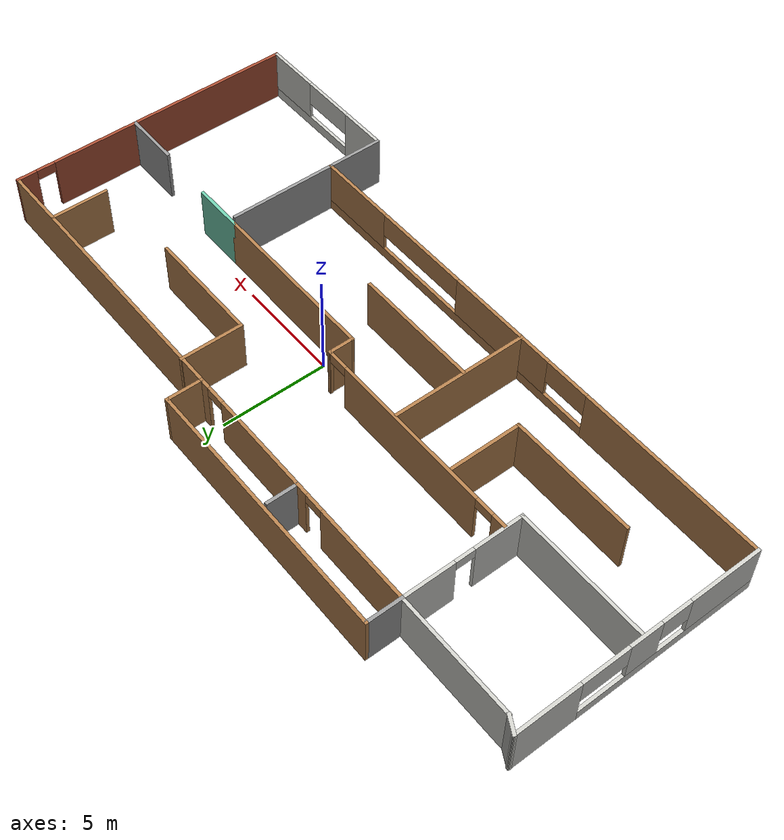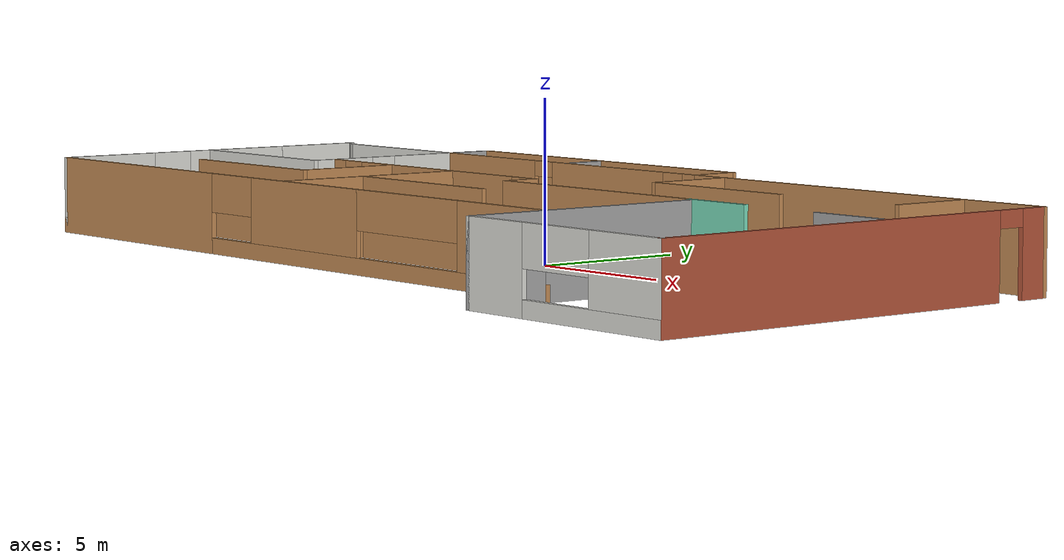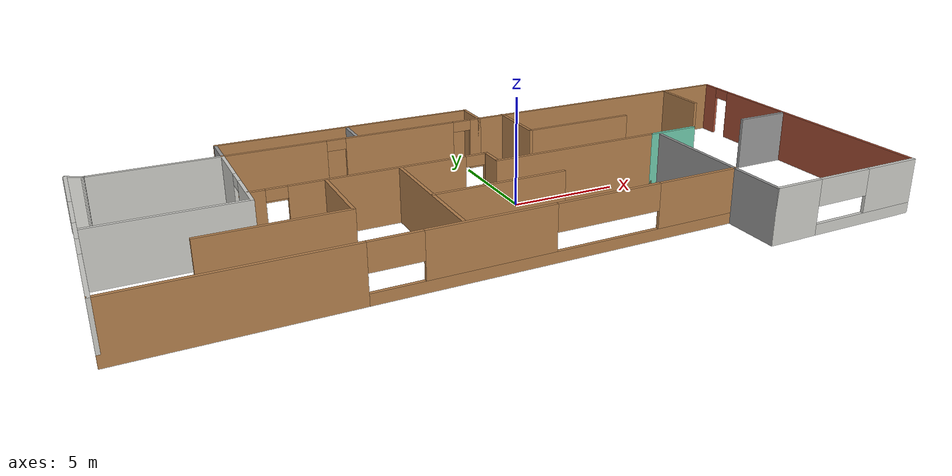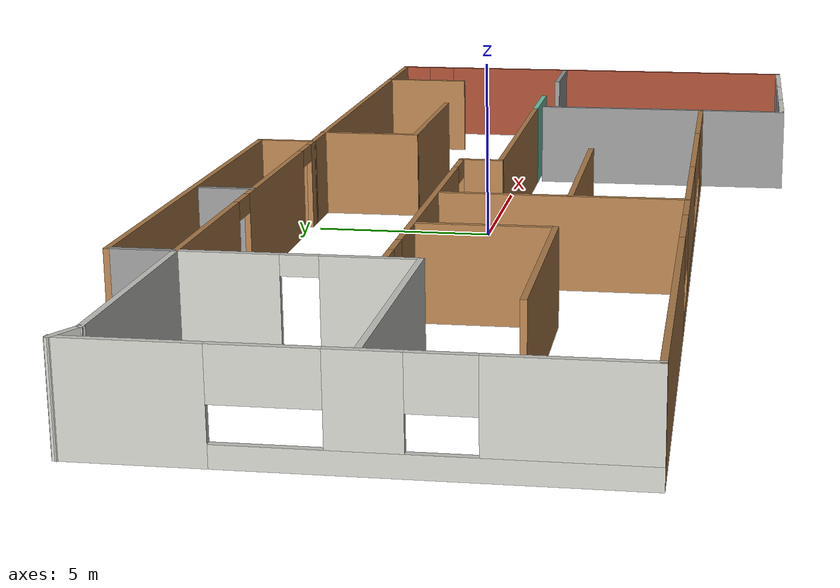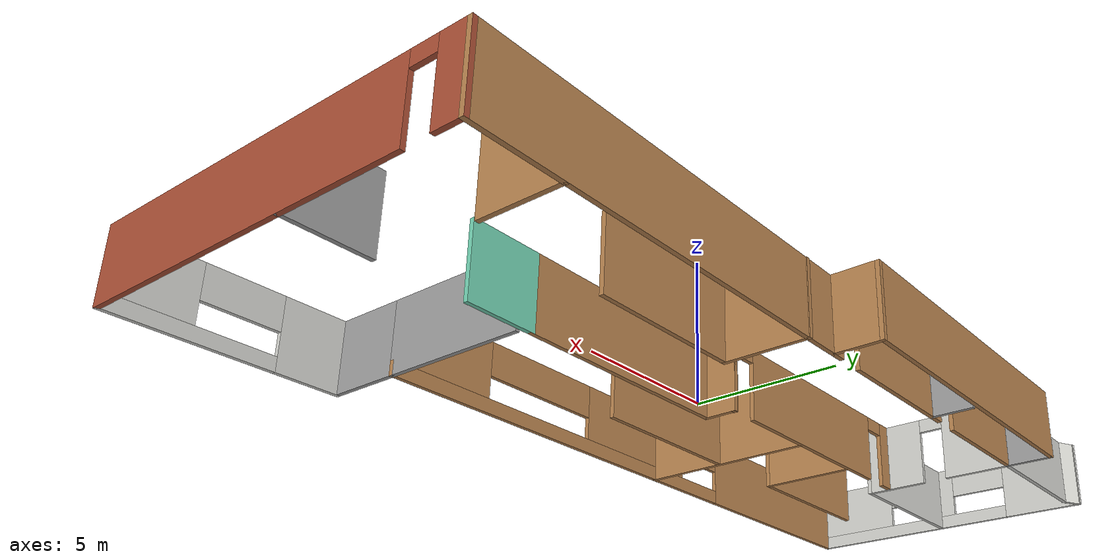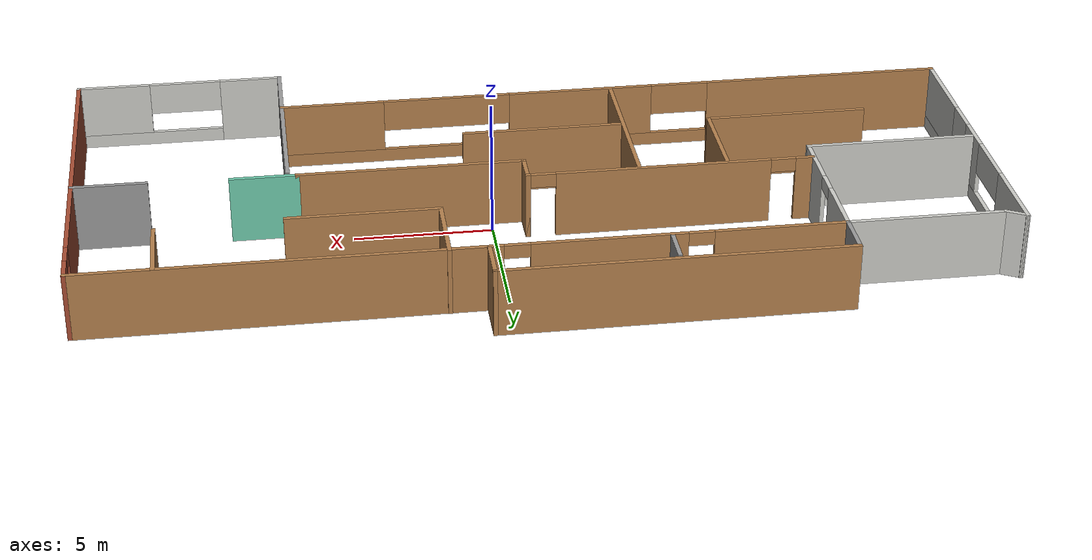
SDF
<?xml version='1.0'?>
<sdf version='1.6'>
  <model name='archi'>
    <pose frame=''>-1.53516 -0.78074 0 0 -0 0</pose>
    <link name='Wall_0'>
      <pose frame=''>-16.3367 0.675001 0 0 0 -1.5708</pose>
      <visual name='Wall_0_Visual_0'>
        <pose frame=''>-4.32805 0 1.25 0 -0 0</pose>
        <geometry>
          <box>
            <size>3.0939 0.15 2.5</size>
          </box>
        </geometry>
        <material>
          <script>
            <uri>file://media/materials/scripts/gazebo.material</uri>
            <name>Gazebo/CeilingTiled</name>
          </script>
          <ambient>1 1 1 1</ambient>
        </material>
        <meta>
          <layer>0</layer>
        </meta>
      </visual>
      <collision name='Wall_0_Collision_0'>
        <geometry>
          <box>
            <size>3.0939 0.15 2.5</size>
          </box>
        </geometry>
        <pose frame=''>-4.32805 0 1.25 0 -0 0</pose>
      </collision>
      <visual name='Wall_0_Visual_1'>
        <pose frame=''>1.54695 0 0.25 0 -0 0</pose>
        <geometry>
          <box>
            <size>8.6561 0.15 0.5</size>
          </box>
        </geometry>
        <material>
          <script>
            <uri>file://media/materials/scripts/gazebo.material</uri>
            <name>Gazebo/CeilingTiled</name>
          </script>
          <ambient>1 1 1 1</ambient>
        </material>
        <meta>
          <layer>0</layer>
        </meta>
      </visual>
      <collision name='Wall_0_Collision_1'>
        <geometry>
          <box>
            <size>8.6561 0.15 0.5</size>
          </box>
        </geometry>
        <pose frame=''>1.54695 0 0.25 0 -0 0</pose>
      </collision>
      <visual name='Wall_0_Visual_2'>
        <pose frame=''>0.24907 0 1.5 0 -0 0</pose>
        <geometry>
          <box>
            <size>1.54754 0.15 2</size>
          </box>
        </geometry>
        <material>
          <script>
            <uri>file://media/materials/scripts/gazebo.material</uri>
            <name>Gazebo/CeilingTiled</name>
          </script>
          <ambient>1 1 1 1</ambient>
        </material>
        <meta>
          <layer>0</layer>
        </meta>
      </visual>
      <collision name='Wall_0_Collision_2'>
        <geometry>
          <box>
            <size>1.54754 0.15 2</size>
          </box>
        </geometry>
        <pose frame=''>0.24907 0 1.5 0 -0 0</pose>
      </collision>
      <visual name='Wall_0_Visual_3'>
        <pose frame=''>4.15234 0 1.5 0 -0 0</pose>
        <geometry>
          <box>
            <size>3.44533 0.15 2</size>
          </box>
        </geometry>
        <material>
          <script>
            <uri>file://media/materials/scripts/gazebo.material</uri>
            <name>Gazebo/CeilingTiled</name>
          </script>
          <ambient>1 1 1 1</ambient>
        </material>
        <meta>
          <layer>0</layer>
        </meta>
      </visual>
      <collision name='Wall_0_Collision_3'>
        <geometry>
          <box>
            <size>3.44533 0.15 2</size>
          </box>
        </geometry>
        <pose frame=''>4.15234 0 1.5 0 -0 0</pose>
      </collision>
      <visual name='Wall_0_Visual_4'>
        <pose frame=''>-1.6529 0 1.9 0 -0 0</pose>
        <geometry>
          <box>
            <size>2.2564 0.15 1.2</size>
          </box>
        </geometry>
        <material>
          <script>
            <uri>file://media/materials/scripts/gazebo.material</uri>
            <name>Gazebo/CeilingTiled</name>
          </script>
          <ambient>1 1 1 1</ambient>
        </material>
        <meta>
          <layer>0</layer>
        </meta>
      </visual>
      <collision name='Wall_0_Collision_4'>
        <geometry>
          <box>
            <size>2.2564 0.15 1.2</size>
          </box>
        </geometry>
        <pose frame=''>-1.6529 0 1.9 0 -0 0</pose>
      </collision>
      <visual name='Wall_0_Visual_5'>
        <pose frame=''>1.72626 0 1.9 0 -0 0</pose>
        <geometry>
          <box>
            <size>1.40683 0.15 1.2</size>
          </box>
        </geometry>
        <material>
          <script>
            <uri>file://media/materials/scripts/gazebo.material</uri>
            <name>Gazebo/CeilingTiled</name>
          </script>
          <ambient>1 1 1 1</ambient>
        </material>
        <meta>
          <layer>0</layer>
        </meta>
      </visual>
      <collision name='Wall_0_Collision_5'>
        <geometry>
          <box>
            <size>1.40683 0.15 1.2</size>
          </box>
        </geometry>
        <pose frame=''>1.72626 0 1.9 0 -0 0</pose>
      </collision>
    </link>
    <link name='Wall_1'>
      <pose frame=''>-3.7867 -5.125 0 0 -0 0</pose>
      <visual name='Wall_1_Visual_0'>
        <pose frame=''>-8.15953 0 1.25 0 -0 0</pose>
        <geometry>
          <box>
            <size>8.93093 0.15 2.5</size>
          </box>
        </geometry>
        <material>
          <script>
            <uri>file://media/materials/scripts/gazebo.material</uri>
            <name>Gazebo/Wood</name>
          </script>
          <ambient>1 1 1 1</ambient>
        </material>
        <meta>
          <layer>0</layer>
        </meta>
      </visual>
      <collision name='Wall_1_Collision_0'>
        <geometry>
          <box>
            <size>8.93093 0.15 2.5</size>
          </box>
        </geometry>
        <pose frame=''>-8.15953 0 1.25 0 -0 0</pose>
      </collision>
      <visual name='Wall_1_Visual_1'>
        <pose frame=''>4.46547 0 0.25 0 -0 0</pose>
        <geometry>
          <box>
            <size>16.3191 0.15 0.5</size>
          </box>
        </geometry>
        <material>
          <script>
            <uri>file://media/materials/scripts/gazebo.material</uri>
            <name>Gazebo/Wood</name>
          </script>
          <ambient>1 1 1 1</ambient>
        </material>
        <meta>
          <layer>0</layer>
        </meta>
      </visual>
      <collision name='Wall_1_Collision_1'>
        <geometry>
          <box>
            <size>16.3191 0.15 0.5</size>
          </box>
        </geometry>
        <pose frame=''>4.46547 0 0.25 0 -0 0</pose>
      </collision>
      <visual name='Wall_1_Visual_2'>
        <pose frame=''>1.21911 0 1.5 0 -0 0</pose>
        <geometry>
          <box>
            <size>5.47537 0.15 2</size>
          </box>
        </geometry>
        <material>
          <script>
            <uri>file://media/materials/scripts/gazebo.material</uri>
            <name>Gazebo/Wood</name>
          </script>
          <ambient>1 1 1 1</ambient>
        </material>
        <meta>
          <layer>0</layer>
        </meta>
      </visual>
      <collision name='Wall_1_Collision_2'>
        <geometry>
          <box>
            <size>5.47537 0.15 2</size>
          </box>
        </geometry>
        <pose frame=''>1.21911 0 1.5 0 -0 0</pose>
      </collision>
      <visual name='Wall_1_Visual_3'>
        <pose frame=''>10.6732 0 1.5 0 -0 0</pose>
        <geometry>
          <box>
            <size>3.90356 0.15 2</size>
          </box>
        </geometry>
        <material>
          <script>
            <uri>file://media/materials/scripts/gazebo.material</uri>
            <name>Gazebo/Wood</name>
          </script>
          <ambient>1 1 1 1</ambient>
        </material>
        <meta>
          <layer>0</layer>
        </meta>
      </visual>
      <collision name='Wall_1_Collision_3'>
        <geometry>
          <box>
            <size>3.90356 0.15 2</size>
          </box>
        </geometry>
        <pose frame=''>10.6732 0 1.5 0 -0 0</pose>
      </collision>
      <visual name='Wall_1_Visual_4'>
        <pose frame=''>-2.60632 0 1.9 0 -0 0</pose>
        <geometry>
          <box>
            <size>2.17549 0.15 1.2</size>
          </box>
        </geometry>
        <material>
          <script>
            <uri>file://media/materials/scripts/gazebo.material</uri>
            <name>Gazebo/Wood</name>
          </script>
          <ambient>1 1 1 1</ambient>
        </material>
        <meta>
          <layer>0</layer>
        </meta>
      </visual>
      <collision name='Wall_1_Collision_4'>
        <geometry>
          <box>
            <size>2.17549 0.15 1.2</size>
          </box>
        </geometry>
        <pose frame=''>-2.60632 0 1.9 0 -0 0</pose>
      </collision>
      <visual name='Wall_1_Visual_5'>
        <pose frame=''>6.33911 0 1.9 0 -0 0</pose>
        <geometry>
          <box>
            <size>4.76465 0.15 1.2</size>
          </box>
        </geometry>
        <material>
          <script>
            <uri>file://media/materials/scripts/gazebo.material</uri>
            <name>Gazebo/Wood</name>
          </script>
          <ambient>1 1 1 1</ambient>
        </material>
        <meta>
          <layer>0</layer>
        </meta>
      </visual>
      <collision name='Wall_1_Collision_5'>
        <geometry>
          <box>
            <size>4.76465 0.15 1.2</size>
          </box>
        </geometry>
        <pose frame=''>6.33911 0 1.9 0 -0 0</pose>
      </collision>
    </link>
    <link name='Wall_10'>
      <collision name='Wall_10_Collision'>
        <geometry>
          <box>
            <size>0.888241 0.15 2.5</size>
          </box>
        </geometry>
        <pose frame=''>0 0 1.25 0 -0 0</pose>
      </collision>
      <visual name='Wall_10_Visual'>
        <pose frame=''>0 0 1.25 0 -0 0</pose>
        <geometry>
          <box>
            <size>0.888241 0.15 2.5</size>
          </box>
        </geometry>
        <material>
          <script>
            <uri>file://media/materials/scripts/gazebo.material</uri>
            <name>Gazebo/CeilingTiled</name>
          </script>
          <ambient>1 1 1 1</ambient>
        </material>
        <meta>
          <layer>0</layer>
        </meta>
      </visual>
      <pose frame=''>-16.0117 6.3 0 0 -0 2.64765</pose>
    </link>
    <link name='Wall_12'>
      <pose frame=''>-3.9117 6.125 0 0 -0 0</pose>
      <visual name='Wall_12_Visual_0'>
        <pose frame=''>-3.89123 0 1.25 0 -0 0</pose>
        <geometry>
          <box>
            <size>4.71753 0.15 2.5</size>
          </box>
        </geometry>
        <material>
          <script>
            <uri>file://media/materials/scripts/gazebo.material</uri>
            <name>Gazebo/Wood</name>
          </script>
          <ambient>1 1 1 1</ambient>
        </material>
        <meta>
          <layer>0</layer>
        </meta>
      </visual>
      <collision name='Wall_12_Collision_0'>
        <geometry>
          <box>
            <size>4.71753 0.15 2.5</size>
          </box>
        </geometry>
        <pose frame=''>-3.89123 0 1.25 0 -0 0</pose>
      </collision>
      <visual name='Wall_12_Visual_1'>
        <pose frame=''>2.07418 0 1.25 0 -0 0</pose>
        <geometry>
          <box>
            <size>5.41329 0.15 2.5</size>
          </box>
        </geometry>
        <material>
          <script>
            <uri>file://media/materials/scripts/gazebo.material</uri>
            <name>Gazebo/Wood</name>
          </script>
          <ambient>1 1 1 1</ambient>
        </material>
        <meta>
          <layer>0</layer>
        </meta>
      </visual>
      <collision name='Wall_12_Collision_1'>
        <geometry>
          <box>
            <size>5.41329 0.15 2.5</size>
          </box>
        </geometry>
        <pose frame=''>2.07418 0 1.25 0 -0 0</pose>
      </collision>
      <visual name='Wall_12_Visual_2'>
        <pose frame=''>5.96541 0 1.25 0 -0 0</pose>
        <geometry>
          <box>
            <size>0.569174 0.15 2.5</size>
          </box>
        </geometry>
        <material>
          <script>
            <uri>file://media/materials/scripts/gazebo.material</uri>
            <name>Gazebo/Wood</name>
          </script>
          <ambient>1 1 1 1</ambient>
        </material>
        <meta>
          <layer>0</layer>
        </meta>
      </visual>
      <collision name='Wall_12_Collision_2'>
        <geometry>
          <box>
            <size>0.569174 0.15 2.5</size>
          </box>
        </geometry>
        <pose frame=''>5.96541 0 1.25 0 -0 0</pose>
      </collision>
      <visual name='Wall_12_Visual_3'>
        <pose frame=''>-1.08247 0 2.25 0 -0 0</pose>
        <geometry>
          <box>
            <size>0.9 0.15 0.5</size>
          </box>
        </geometry>
        <material>
          <script>
            <uri>file://media/materials/scripts/gazebo.material</uri>
            <name>Gazebo/Wood</name>
          </script>
          <ambient>1 1 1 1</ambient>
        </material>
        <meta>
          <layer>0</layer>
        </meta>
      </visual>
      <collision name='Wall_12_Collision_3'>
        <geometry>
          <box>
            <size>0.9 0.15 0.5</size>
          </box>
        </geometry>
        <pose frame=''>-1.08247 0 2.25 0 -0 0</pose>
      </collision>
      <visual name='Wall_12_Visual_4'>
        <pose frame=''>5.23083 0 2.25 0 -0 0</pose>
        <geometry>
          <box>
            <size>0.9 0.15 0.5</size>
          </box>
        </geometry>
        <material>
          <script>
            <uri>file://media/materials/scripts/gazebo.material</uri>
            <name>Gazebo/Wood</name>
          </script>
          <ambient>1 1 1 1</ambient>
        </material>
        <meta>
          <layer>0</layer>
        </meta>
      </visual>
      <collision name='Wall_12_Collision_4'>
        <geometry>
          <box>
            <size>0.9 0.15 0.5</size>
          </box>
        </geometry>
        <pose frame=''>5.23083 0 2.25 0 -0 0</pose>
      </collision>
    </link>
    <link name='Wall_14'>
      <collision name='Wall_14_Collision'>
        <geometry>
          <box>
            <size>1.5 0.15 2.5</size>
          </box>
        </geometry>
        <pose frame=''>0 0 1.25 0 -0 0</pose>
      </collision>
      <visual name='Wall_14_Visual'>
        <pose frame=''>0 0 1.25 0 -0 0</pose>
        <geometry>
          <box>
            <size>1.5 0.15 2.5</size>
          </box>
        </geometry>
        <material>
          <script>
            <uri>file://media/materials/scripts/gazebo.material</uri>
            <name>Gazebo/Grey</name>
          </script>
          <ambient>1 1 1 1</ambient>
        </material>
        <meta>
          <layer>0</layer>
        </meta>
      </visual>
      <pose frame=''>-3.97763 6.82899 0 0 -0 1.5708</pose>
    </link>
    <link name='Wall_16'>
      <pose frame=''>-10.0867 3.325 0 0 0 -1.5708</pose>
      <visual name='Wall_16_Visual_0'>
        <pose frame=''>-1.63243 0 1.25 0 -0 0</pose>
        <geometry>
          <box>
            <size>2.48515 0.15 2.5</size>
          </box>
        </geometry>
        <material>
          <script>
            <uri>file://media/materials/scripts/gazebo.material</uri>
            <name>Gazebo/CeilingTiled</name>
          </script>
          <ambient>1 1 1 1</ambient>
        </material>
        <meta>
          <layer>0</layer>
        </meta>
      </visual>
      <collision name='Wall_16_Collision_0'>
        <geometry>
          <box>
            <size>2.48515 0.15 2.5</size>
          </box>
        </geometry>
        <pose frame=''>-1.63243 0 1.25 0 -0 0</pose>
      </collision>
      <visual name='Wall_16_Visual_1'>
        <pose frame=''>1.69257 0 1.25 0 -0 0</pose>
        <geometry>
          <box>
            <size>2.36485 0.15 2.5</size>
          </box>
        </geometry>
        <material>
          <script>
            <uri>file://media/materials/scripts/gazebo.material</uri>
            <name>Gazebo/CeilingTiled</name>
          </script>
          <ambient>1 1 1 1</ambient>
        </material>
        <meta>
          <layer>0</layer>
        </meta>
      </visual>
      <collision name='Wall_16_Collision_1'>
        <geometry>
          <box>
            <size>2.36485 0.15 2.5</size>
          </box>
        </geometry>
        <pose frame=''>1.69257 0 1.25 0 -0 0</pose>
      </collision>
      <visual name='Wall_16_Visual_2'>
        <pose frame=''>0.06015 0 2.25 0 -0 0</pose>
        <geometry>
          <box>
            <size>0.9 0.15 0.5</size>
          </box>
        </geometry>
        <material>
          <script>
            <uri>file://media/materials/scripts/gazebo.material</uri>
            <name>Gazebo/CeilingTiled</name>
          </script>
          <ambient>1 1 1 1</ambient>
        </material>
        <meta>
          <layer>0</layer>
        </meta>
      </visual>
      <collision name='Wall_16_Collision_2'>
        <geometry>
          <box>
            <size>0.9 0.15 0.5</size>
          </box>
        </geometry>
        <pose frame=''>0.06015 0 2.25 0 -0 0</pose>
      </collision>
    </link>
    <link name='Wall_17'>
      <collision name='Wall_17_Collision'>
        <geometry>
          <box>
            <size>6.25 0.15 2.5</size>
          </box>
        </geometry>
        <pose frame=''>0 0 1.25 0 -0 0</pose>
      </collision>
      <visual name='Wall_17_Visual'>
        <pose frame=''>0 0 1.25 0 -0 0</pose>
        <geometry>
          <box>
            <size>6.25 0.15 2.5</size>
          </box>
        </geometry>
        <material>
          <script>
            <uri>file://media/materials/scripts/gazebo.material</uri>
            <name>Gazebo/CeilingTiled</name>
          </script>
          <ambient>1 1 1 1</ambient>
        </material>
        <meta>
          <layer>0</layer>
        </meta>
      </visual>
      <pose frame=''>-13.1367 0.525001 0 0 -0 3.14159</pose>
    </link>
    <link name='Wall_2'>
      <collision name='Wall_2_Collision'>
        <geometry>
          <box>
            <size>2.75 0.15 2.5</size>
          </box>
        </geometry>
        <pose frame=''>0 0 1.25 0 -0 0</pose>
      </collision>
      <visual name='Wall_2_Visual'>
        <pose frame=''>0 0 1.25 0 -0 0</pose>
        <geometry>
          <box>
            <size>2.75 0.15 2.5</size>
          </box>
        </geometry>
        <material>
          <script>
            <uri>file://media/materials/scripts/gazebo.material</uri>
            <name>Gazebo/Grey</name>
          </script>
          <ambient>1 1 1 1</ambient>
        </material>
        <meta>
          <layer>0</layer>
        </meta>
      </visual>
      <pose frame=''>8.7633 -6.425 0 0 0 -1.5708</pose>
    </link>
    <link name='Wall_23'>
      <pose frame=''>-4.84841 1.33876 0 0 -0 0</pose>
      <visual name='Wall_23_Visual_0'>
        <pose frame=''>-4.90247 0 1.25 0 -0 0</pose>
        <geometry>
          <box>
            <size>0.69505 0.15 2.5</size>
          </box>
        </geometry>
        <material>
          <script>
            <uri>file://media/materials/scripts/gazebo.material</uri>
            <name>Gazebo/Wood</name>
          </script>
          <ambient>0.435294 0.796078 0.67451 1</ambient>
        </material>
        <meta>
          <layer>0</layer>
        </meta>
      </visual>
      <collision name='Wall_23_Collision_0'>
        <geometry>
          <box>
            <size>0.69505 0.15 2.5</size>
          </box>
        </geometry>
        <pose frame=''>-4.90247 0 1.25 0 -0 0</pose>
      </collision>
      <visual name='Wall_23_Visual_1'>
        <pose frame=''>0.255504 0 1.25 0 -0 0</pose>
        <geometry>
          <box>
            <size>7.82091 0.15 2.5</size>
          </box>
        </geometry>
        <material>
          <script>
            <uri>file://media/materials/scripts/gazebo.material</uri>
            <name>Gazebo/Wood</name>
          </script>
          <ambient>0.435294 0.796078 0.67451 1</ambient>
        </material>
        <meta>
          <layer>0</layer>
        </meta>
      </visual>
      <collision name='Wall_23_Collision_1'>
        <geometry>
          <box>
            <size>7.82091 0.15 2.5</size>
          </box>
        </geometry>
        <pose frame=''>0.255504 0 1.25 0 -0 0</pose>
      </collision>
      <visual name='Wall_23_Visual_2'>
        <pose frame=''>5.15798 0 1.25 0 -0 0</pose>
        <geometry>
          <box>
            <size>0.184042 0.15 2.5</size>
          </box>
        </geometry>
        <material>
          <script>
            <uri>file://media/materials/scripts/gazebo.material</uri>
            <name>Gazebo/Wood</name>
          </script>
          <ambient>0.435294 0.796078 0.67451 1</ambient>
        </material>
        <meta>
          <layer>0</layer>
        </meta>
      </visual>
      <collision name='Wall_23_Collision_2'>
        <geometry>
          <box>
            <size>0.184042 0.15 2.5</size>
          </box>
        </geometry>
        <pose frame=''>5.15798 0 1.25 0 -0 0</pose>
      </collision>
      <visual name='Wall_23_Visual_3'>
        <pose frame=''>-4.10495 0 2.25 0 -0 0</pose>
        <geometry>
          <box>
            <size>0.9 0.15 0.5</size>
          </box>
        </geometry>
        <material>
          <script>
            <uri>file://media/materials/scripts/gazebo.material</uri>
            <name>Gazebo/Wood</name>
          </script>
          <ambient>0.435294 0.796078 0.67451 1</ambient>
        </material>
        <meta>
          <layer>0</layer>
        </meta>
      </visual>
      <collision name='Wall_23_Collision_3'>
        <geometry>
          <box>
            <size>0.9 0.15 0.5</size>
          </box>
        </geometry>
        <pose frame=''>-4.10495 0 2.25 0 -0 0</pose>
      </collision>
      <visual name='Wall_23_Visual_4'>
        <pose frame=''>4.61596 0 2.25 0 -0 0</pose>
        <geometry>
          <box>
            <size>0.9 0.15 0.5</size>
          </box>
        </geometry>
        <material>
          <script>
            <uri>file://media/materials/scripts/gazebo.material</uri>
            <name>Gazebo/Wood</name>
          </script>
          <ambient>0.435294 0.796078 0.67451 1</ambient>
        </material>
        <meta>
          <layer>0</layer>
        </meta>
      </visual>
      <collision name='Wall_23_Collision_4'>
        <geometry>
          <box>
            <size>0.9 0.15 0.5</size>
          </box>
        </geometry>
        <pose frame=''>4.61596 0 2.25 0 -0 0</pose>
      </collision>
    </link>
    <link name='Wall_24'>
      <collision name='Wall_24_Collision'>
        <geometry>
          <box>
            <size>1.25 0.15 2.5</size>
          </box>
        </geometry>
        <pose frame=''>0 0 1.25 0 -0 0</pose>
      </collision>
      <visual name='Wall_24_Visual'>
        <pose frame=''>0 0 1.25 0 -0 0</pose>
        <geometry>
          <box>
            <size>1.25 0.15 2.5</size>
          </box>
        </geometry>
        <material>
          <script>
            <uri>file://media/materials/scripts/gazebo.material</uri>
            <name>Gazebo/Wood</name>
          </script>
          <ambient>1 1 1 1</ambient>
        </material>
        <meta>
          <layer>0</layer>
        </meta>
      </visual>
      <pose frame=''>0.326592 0.788761 0 0 0 -1.5708</pose>
    </link>
    <link name='Wall_25'>
      <collision name='Wall_25_Collision'>
        <geometry>
          <box>
            <size>8.25 0.15 2.5</size>
          </box>
        </geometry>
        <pose frame=''>0 0 1.25 0 -0 0</pose>
      </collision>
      <visual name='Wall_25_Visual'>
        <pose frame=''>0 0 1.25 0 -0 0</pose>
        <geometry>
          <box>
            <size>8.25 0.15 2.5</size>
          </box>
        </geometry>
        <material>
          <script>
            <uri>file://media/materials/scripts/gazebo.material</uri>
            <name>Gazebo/Wood</name>
          </script>
          <ambient>0.435294 0.796078 0.67451 1</ambient>
        </material>
        <meta>
          <layer>0</layer>
        </meta>
      </visual>
      <pose frame=''>4.37659 0.238761 0 0 -0 0</pose>
    </link>
    <link name='Wall_27'>
      <collision name='Wall_27_Collision'>
        <geometry>
          <box>
            <size>5.25 0.15 2.5</size>
          </box>
        </geometry>
        <pose frame=''>0 0 1.25 0 -0 0</pose>
      </collision>
      <visual name='Wall_27_Visual'>
        <pose frame=''>0 0 1.25 0 -0 0</pose>
        <geometry>
          <box>
            <size>5.25 0.15 2.5</size>
          </box>
        </geometry>
        <material>
          <script>
            <uri>file://media/materials/scripts/gazebo.material</uri>
            <name>Gazebo/Grey</name>
          </script>
          <ambient>1 1 1 1</ambient>
        </material>
        <meta>
          <layer>0</layer>
        </meta>
      </visual>
      <pose frame=''>8.7633 -2.575 0 0 -0 1.5708</pose>
    </link>
    <link name='Wall_29'>
      <collision name='Wall_29_Collision'>
        <geometry>
          <box>
            <size>2.5 0.15 2.5</size>
          </box>
        </geometry>
        <pose frame=''>0 0 1.25 0 -0 0</pose>
      </collision>
      <visual name='Wall_29_Visual'>
        <pose frame=''>0 0 1.25 0 -0 0</pose>
        <geometry>
          <box>
            <size>2.5 0.15 2.5</size>
          </box>
        </geometry>
        <material>
          <script>
            <uri>file://media/materials/scripts/gazebo.material</uri>
            <name>Gazebo/Grey</name>
          </script>
          <ambient>0.435294 0.796078 0.67451 1</ambient>
        </material>
        <meta>
          <layer>0</layer>
        </meta>
      </visual>
      <pose frame=''>9.60159 0.238761 0 0 -0 0</pose>
    </link>
    <link name='Wall_3'>
      <pose frame=''>12.5633 -7.725 0 0 -0 0</pose>
      <visual name='Wall_3_Visual_0'>
        <pose frame=''>-2.7036 0 1.25 0 -0 0</pose>
        <geometry>
          <box>
            <size>2.3428 0.15 2.5</size>
          </box>
        </geometry>
        <material>
          <script>
            <uri>file://media/materials/scripts/gazebo.material</uri>
            <name>Gazebo/CeilingTiled</name>
          </script>
          <ambient>1 1 1 1</ambient>
        </material>
        <meta>
          <layer>0</layer>
        </meta>
      </visual>
      <collision name='Wall_3_Collision_0'>
        <geometry>
          <box>
            <size>2.3428 0.15 2.5</size>
          </box>
        </geometry>
        <pose frame=''>-2.7036 0 1.25 0 -0 0</pose>
      </collision>
      <visual name='Wall_3_Visual_1'>
        <pose frame=''>1.1714 0 0.25 0 -0 0</pose>
        <geometry>
          <box>
            <size>5.4072 0.15 0.5</size>
          </box>
        </geometry>
        <material>
          <script>
            <uri>file://media/materials/scripts/gazebo.material</uri>
            <name>Gazebo/CeilingTiled</name>
          </script>
          <ambient>1 1 1 1</ambient>
        </material>
        <meta>
          <layer>0</layer>
        </meta>
      </visual>
      <collision name='Wall_3_Collision_1'>
        <geometry>
          <box>
            <size>5.4072 0.15 0.5</size>
          </box>
        </geometry>
        <pose frame=''>1.1714 0 0.25 0 -0 0</pose>
      </collision>
      <visual name='Wall_3_Visual_2'>
        <pose frame=''>2.50188 0 1.5 0 -0 0</pose>
        <geometry>
          <box>
            <size>2.74625 0.15 2</size>
          </box>
        </geometry>
        <material>
          <script>
            <uri>file://media/materials/scripts/gazebo.material</uri>
            <name>Gazebo/CeilingTiled</name>
          </script>
          <ambient>1 1 1 1</ambient>
        </material>
        <meta>
          <layer>0</layer>
        </meta>
      </visual>
      <collision name='Wall_3_Collision_2'>
        <geometry>
          <box>
            <size>2.74625 0.15 2</size>
          </box>
        </geometry>
        <pose frame=''>2.50188 0 1.5 0 -0 0</pose>
      </collision>
      <visual name='Wall_3_Visual_3'>
        <pose frame=''>-0.201723 0 1.9 0 -0 0</pose>
        <geometry>
          <box>
            <size>2.66096 0.15 1.2</size>
          </box>
        </geometry>
        <material>
          <script>
            <uri>file://media/materials/scripts/gazebo.material</uri>
            <name>Gazebo/CeilingTiled</name>
          </script>
          <ambient>1 1 1 1</ambient>
        </material>
        <meta>
          <layer>0</layer>
        </meta>
      </visual>
      <collision name='Wall_3_Collision_3'>
        <geometry>
          <box>
            <size>2.66096 0.15 1.2</size>
          </box>
        </geometry>
        <pose frame=''>-0.201723 0 1.9 0 -0 0</pose>
      </collision>
    </link>
    <link name='Wall_31'>
      <collision name='Wall_31_Collision'>
        <geometry>
          <box>
            <size>2.75 0.15 2.5</size>
          </box>
        </geometry>
        <pose frame=''>0 0 1.25 0 -0 0</pose>
      </collision>
      <visual name='Wall_31_Visual'>
        <pose frame=''>0 0 1.25 0 -0 0</pose>
        <geometry>
          <box>
            <size>2.75 0.15 2.5</size>
          </box>
        </geometry>
        <material>
          <script>
            <uri>file://media/materials/scripts/gazebo.material</uri>
            <name>Gazebo/Grey</name>
          </script>
          <ambient>1 1 1 1</ambient>
        </material>
        <meta>
          <layer>0</layer>
        </meta>
      </visual>
      <pose frame=''>15.0533 0.108203 0 0 -0 3.14159</pose>
    </link>
    <link name='Wall_33'>
      <collision name='Wall_33_Collision'>
        <geometry>
          <box>
            <size>6.5 0.15 2.5</size>
          </box>
        </geometry>
        <pose frame=''>0 0 1.25 0 -0 0</pose>
      </collision>
      <visual name='Wall_33_Visual'>
        <pose frame=''>0 0 1.25 0 -0 0</pose>
        <geometry>
          <box>
            <size>6.5 0.15 2.5</size>
          </box>
        </geometry>
        <material>
          <script>
            <uri>file://media/materials/scripts/gazebo.material</uri>
            <name>Gazebo/Wood</name>
          </script>
          <ambient>0.435294 0.796078 0.67451 1</ambient>
        </material>
        <meta>
          <layer>0</layer>
        </meta>
      </visual>
      <pose frame=''>-3.71011 -1.94324 0 0 0 -1.5708</pose>
    </link>
    <link name='Wall_35'>
      <collision name='Wall_35_Collision'>
        <geometry>
          <box>
            <size>2.75 0.15 2.5</size>
          </box>
        </geometry>
        <pose frame=''>0 0 1.25 0 -0 0</pose>
      </collision>
      <visual name='Wall_35_Visual'>
        <pose frame=''>0 0 1.25 0 -0 0</pose>
        <geometry>
          <box>
            <size>2.75 0.15 2.5</size>
          </box>
        </geometry>
        <material>
          <script>
            <uri>file://media/materials/scripts/gazebo.material</uri>
            <name>Gazebo/Wood</name>
          </script>
          <ambient>1 1 1 1</ambient>
        </material>
        <meta>
          <layer>0</layer>
        </meta>
      </visual>
      <pose frame=''>13.4642 4.80048 0 0 0 -1.5708</pose>
    </link>
    <link name='Wall_37'>
      <collision name='Wall_37_Collision'>
        <geometry>
          <box>
            <size>3.5 0.15 2.5</size>
          </box>
        </geometry>
        <pose frame=''>0 0 1.25 0 -0 0</pose>
      </collision>
      <visual name='Wall_37_Visual'>
        <pose frame=''>0 0 1.25 0 -0 0</pose>
        <geometry>
          <box>
            <size>3.5 0.15 2.5</size>
          </box>
        </geometry>
        <material>
          <script>
            <uri>file://media/materials/scripts/gazebo.material</uri>
            <name>Gazebo/Wood</name>
          </script>
          <ambient>1 1 1 1</ambient>
        </material>
        <meta>
          <layer>0</layer>
        </meta>
      </visual>
      <pose frame=''>-6.92026 -0.443244 0 0 0 -1.5708</pose>
    </link>
    <link name='Wall_38'>
      <collision name='Wall_38_Collision'>
        <geometry>
          <box>
            <size>6 0.15 2.5</size>
          </box>
        </geometry>
        <pose frame=''>0 0 1.25 0 -0 0</pose>
      </collision>
      <visual name='Wall_38_Visual'>
        <pose frame=''>0 0 1.25 0 -0 0</pose>
        <geometry>
          <box>
            <size>6 0.15 2.5</size>
          </box>
        </geometry>
        <material>
          <script>
            <uri>file://media/materials/scripts/gazebo.material</uri>
            <name>Gazebo/Wood</name>
          </script>
          <ambient>1 1 1 1</ambient>
        </material>
        <meta>
          <layer>0</layer>
        </meta>
      </visual>
      <pose frame=''>-9.84526 -2.11824 0 0 -0 3.14159</pose>
    </link>
    <link name='Wall_4'>
      <pose frame=''>16.3633 -0.799999 0 0 -0 1.5708</pose>
      <visual name='Wall_4_Visual_0'>
        <pose frame=''>-0.94354 0 1.25 0 -0 0</pose>
        <geometry>
          <box>
            <size>12.1129 0.15 2.5</size>
          </box>
        </geometry>
        <material>
          <script>
            <uri>file://media/materials/scripts/gazebo.material</uri>
            <name>Gazebo/Bricks</name>
          </script>
          <ambient>1 1 1 1</ambient>
        </material>
        <meta>
          <layer>0</layer>
        </meta>
      </visual>
      <collision name='Wall_4_Collision_0'>
        <geometry>
          <box>
            <size>12.1129 0.15 2.5</size>
          </box>
        </geometry>
        <pose frame=''>-0.94354 0 1.25 0 -0 0</pose>
      </collision>
      <visual name='Wall_4_Visual_1'>
        <pose frame=''>6.50646 0 1.25 0 -0 0</pose>
        <geometry>
          <box>
            <size>0.98708 0.15 2.5</size>
          </box>
        </geometry>
        <material>
          <script>
            <uri>file://media/materials/scripts/gazebo.material</uri>
            <name>Gazebo/Bricks</name>
          </script>
          <ambient>1 1 1 1</ambient>
        </material>
        <meta>
          <layer>0</layer>
        </meta>
      </visual>
      <collision name='Wall_4_Collision_1'>
        <geometry>
          <box>
            <size>0.98708 0.15 2.5</size>
          </box>
        </geometry>
        <pose frame=''>6.50646 0 1.25 0 -0 0</pose>
      </collision>
      <visual name='Wall_4_Visual_2'>
        <pose frame=''>5.56292 0 2.25 0 -0 0</pose>
        <geometry>
          <box>
            <size>0.9 0.15 0.5</size>
          </box>
        </geometry>
        <material>
          <script>
            <uri>file://media/materials/scripts/gazebo.material</uri>
            <name>Gazebo/Bricks</name>
          </script>
          <ambient>1 1 1 1</ambient>
        </material>
        <meta>
          <layer>0</layer>
        </meta>
      </visual>
      <collision name='Wall_4_Collision_2'>
        <geometry>
          <box>
            <size>0.9 0.15 0.5</size>
          </box>
        </geometry>
        <pose frame=''>5.56292 0 2.25 0 -0 0</pose>
      </collision>
    </link>
    <link name='Wall_40'>
      <collision name='Wall_40_Collision'>
        <geometry>
          <box>
            <size>6 0.15 2.5</size>
          </box>
        </geometry>
        <pose frame=''>0 0 1.25 0 -0 0</pose>
      </collision>
      <visual name='Wall_40_Visual'>
        <pose frame=''>0 0 1.25 0 -0 0</pose>
        <geometry>
          <box>
            <size>6 0.15 2.5</size>
          </box>
        </geometry>
        <material>
          <script>
            <uri>file://media/materials/scripts/gazebo.material</uri>
            <name>Gazebo/Wood</name>
          </script>
          <ambient>0.435294 0.796078 0.67451 1</ambient>
        </material>
        <meta>
          <layer>0</layer>
        </meta>
      </visual>
      <pose frame=''>-0.731611 -2.1389 0 0 -0 0</pose>
    </link>
    <link name='Wall_42'>
      <collision name='Wall_42_Collision'>
        <geometry>
          <box>
            <size>3 0.15 2.5</size>
          </box>
        </geometry>
        <pose frame=''>0 0 1.25 0 -0 0</pose>
      </collision>
      <visual name='Wall_42_Visual'>
        <pose frame=''>0 0 1.25 0 -0 0</pose>
        <geometry>
          <box>
            <size>3 0.15 2.5</size>
          </box>
        </geometry>
        <material>
          <script>
            <uri>file://media/materials/scripts/gazebo.material</uri>
            <name>Gazebo/Wood</name>
          </script>
          <ambient>1 1 1 1</ambient>
        </material>
        <meta>
          <layer>0</layer>
        </meta>
      </visual>
      <pose frame=''>3.61973 4.72899 0 0 0 -1.5708</pose>
    </link>
    <link name='Wall_43'>
      <collision name='Wall_43_Collision'>
        <geometry>
          <box>
            <size>5.5 0.15 2.5</size>
          </box>
        </geometry>
        <pose frame=''>0 0 1.25 0 -0 0</pose>
      </collision>
      <visual name='Wall_43_Visual'>
        <pose frame=''>0 0 1.25 0 -0 0</pose>
        <geometry>
          <box>
            <size>5.5 0.15 2.5</size>
          </box>
        </geometry>
        <material>
          <script>
            <uri>file://media/materials/scripts/gazebo.material</uri>
            <name>Gazebo/Wood</name>
          </script>
          <ambient>1 1 1 1</ambient>
        </material>
        <meta>
          <layer>0</layer>
        </meta>
      </visual>
      <pose frame=''>6.29473 3.30399 0 0 -0 0</pose>
    </link>
    <link name='Wall_5'>
      <collision name='Wall_5_Collision'>
        <geometry>
          <box>
            <size>14.25 0.15 2.5</size>
          </box>
        </geometry>
        <pose frame=''>0 0 1.25 0 -0 0</pose>
      </collision>
      <visual name='Wall_5_Visual'>
        <pose frame=''>0 0 1.25 0 -0 0</pose>
        <geometry>
          <box>
            <size>14.25 0.15 2.5</size>
          </box>
        </geometry>
        <material>
          <script>
            <uri>file://media/materials/scripts/gazebo.material</uri>
            <name>Gazebo/Wood</name>
          </script>
          <ambient>1 1 1 1</ambient>
        </material>
        <meta>
          <layer>0</layer>
        </meta>
      </visual>
      <pose frame=''>9.3133 6.125 0 0 -0 3.14159</pose>
    </link>
    <link name='Wall_6'>
      <collision name='Wall_6_Collision'>
        <geometry>
          <box>
            <size>1.75 0.15 2.5</size>
          </box>
        </geometry>
        <pose frame=''>0 0 1.25 0 -0 0</pose>
      </collision>
      <visual name='Wall_6_Visual'>
        <pose frame=''>0 0 1.25 0 -0 0</pose>
        <geometry>
          <box>
            <size>1.75 0.15 2.5</size>
          </box>
        </geometry>
        <material>
          <script>
            <uri>file://media/materials/scripts/gazebo.material</uri>
            <name>Gazebo/Wood</name>
          </script>
          <ambient>1 1 1 1</ambient>
        </material>
        <meta>
          <layer>0</layer>
        </meta>
      </visual>
      <pose frame=''>2.2633 6.925 0 0 -0 1.5708</pose>
    </link>
    <link name='Wall_7'>
      <collision name='Wall_7_Collision'>
        <geometry>
          <box>
            <size>12.5 0.15 2.5</size>
          </box>
        </geometry>
        <pose frame=''>0 0 1.25 0 -0 0</pose>
      </collision>
      <visual name='Wall_7_Visual'>
        <pose frame=''>0 0 1.25 0 -0 0</pose>
        <geometry>
          <box>
            <size>12.5 0.15 2.5</size>
          </box>
        </geometry>
        <material>
          <script>
            <uri>file://media/materials/scripts/gazebo.material</uri>
            <name>Gazebo/Wood</name>
          </script>
          <ambient>1 1 1 1</ambient>
        </material>
        <meta>
          <layer>0</layer>
        </meta>
      </visual>
      <pose frame=''>-3.9117 7.725 0 0 -0 3.14159</pose>
    </link>
    <link name='Wall_8'>
      <collision name='Wall_8_Collision'>
        <geometry>
          <box>
            <size>1.75 0.15 2.5</size>
          </box>
        </geometry>
        <pose frame=''>0 0 1.25 0 -0 0</pose>
      </collision>
      <visual name='Wall_8_Visual'>
        <pose frame=''>0 0 1.25 0 -0 0</pose>
        <geometry>
          <box>
            <size>1.75 0.15 2.5</size>
          </box>
        </geometry>
        <material>
          <script>
            <uri>file://media/materials/scripts/gazebo.material</uri>
            <name>Gazebo/Grey</name>
          </script>
          <ambient>1 1 1 1</ambient>
        </material>
        <meta>
          <layer>0</layer>
        </meta>
      </visual>
      <pose frame=''>-10.0867 6.925 0 0 0 -1.5708</pose>
    </link>
    <link name='Wall_9'>
      <collision name='Wall_9_Collision'>
        <geometry>
          <box>
            <size>5.75 0.15 2.5</size>
          </box>
        </geometry>
        <pose frame=''>0 0 1.25 0 -0 0</pose>
      </collision>
      <visual name='Wall_9_Visual'>
        <pose frame=''>0 0 1.25 0 -0 0</pose>
        <geometry>
          <box>
            <size>5.75 0.15 2.5</size>
          </box>
        </geometry>
        <material>
          <script>
            <uri>file://media/materials/scripts/gazebo.material</uri>
            <name>Gazebo/CeilingTiled</name>
          </script>
          <ambient>1 1 1 1</ambient>
        </material>
        <meta>
          <layer>0</layer>
        </meta>
      </visual>
      <pose frame=''>-12.8867 6.125 0 0 -0 3.14159</pose>
    </link>
    <static>1</static>
  </model>
</sdf>
